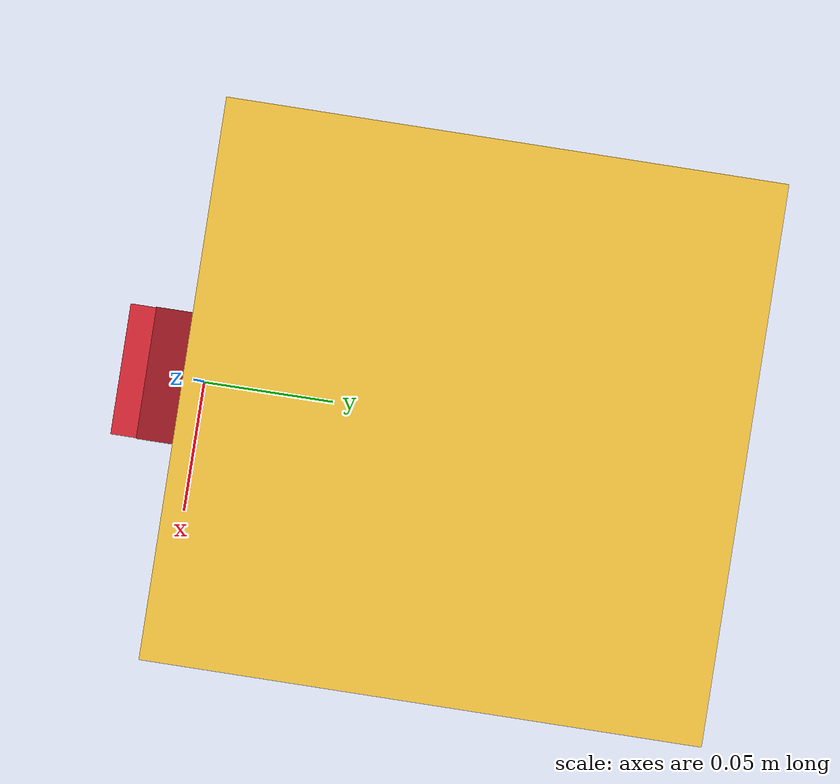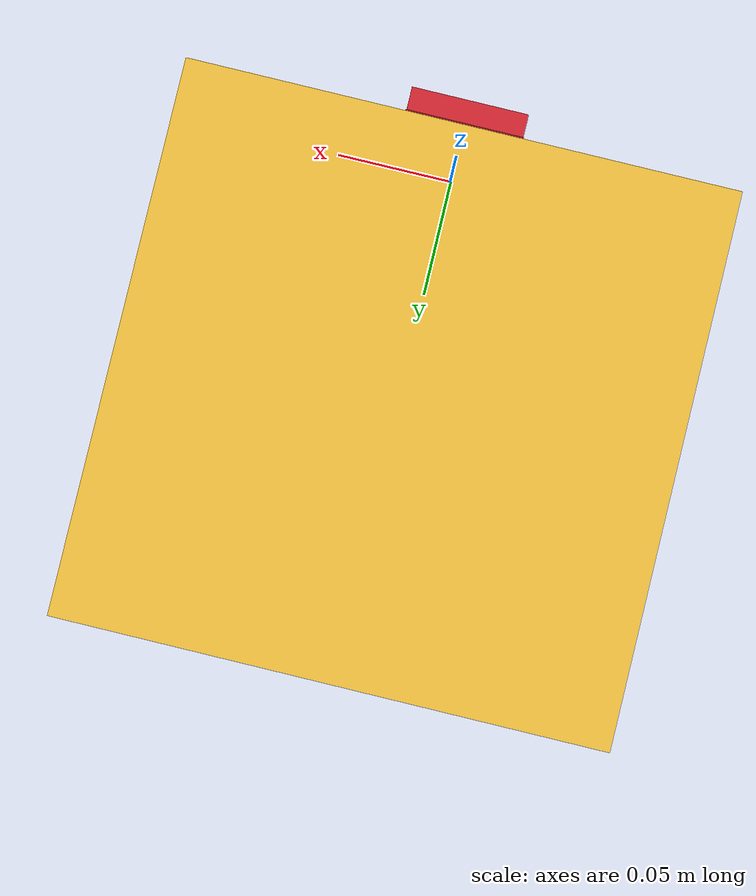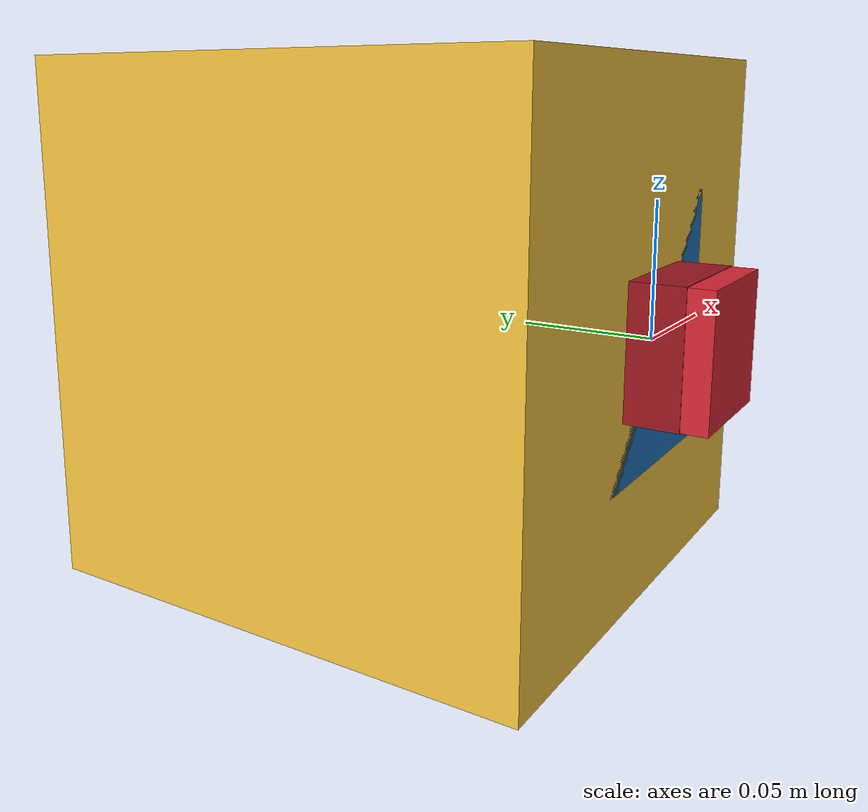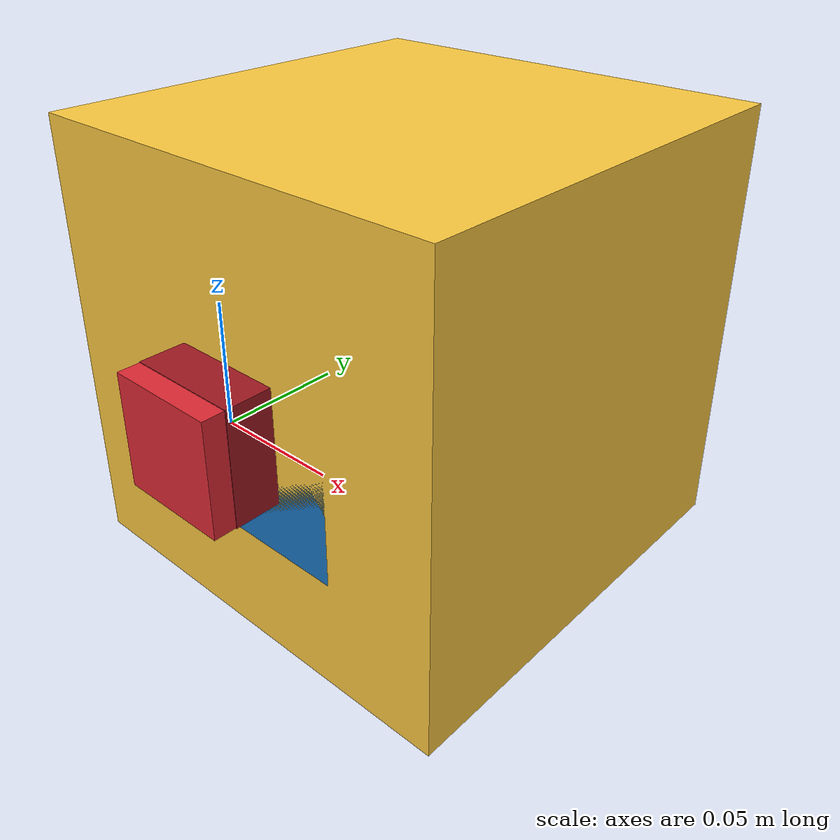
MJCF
<mujoco model="MuJoCo Model">
  <compiler angle="radian"/>

  <worldbody>
    <body name="core">
      <geom name="core" size="0.1 0.1 0.1" pos="0 0.1 0" type="box" mass="1" rgba="0.992157 0.792157 0.25098 1"/>
      <body name="lefthinge">
        <body name="leftstator">
          <geom name="leftstator" size="0.02475 0.0297 0.02475" type="box" mass="0.02" rgba="0.87451 0.160784 0.207843 1"/>
        </body>
        <body name="leftrotor">
          <joint name="leftservo" axis="0 0 1"/>
          <geom name="leftrotor" size="0.025 0.02 0.025" type="box" mass="0.04" rgba="0.627451 0.0941176 0.129412 1"/>
          <body name="left_frontbrick">
            <geom name="left_frontbrick" size="0.05 0.05 0.05" pos="0 0.05 0" type="box" mass="0.055" rgba="0.109804 0.466667 0.764706 1"/>
          </body>
        </body>
      </body>
      <body name="fronthinge">
        <body name="frontstator">
          <geom name="frontstator" size="0.02475 0.0297 0.02475" type="box" mass="0.02" rgba="0.87451 0.160784 0.207843 1"/>
        </body>
        <body name="frontrotor">
          <joint name="frontservo" axis="0 0 1"/>
          <geom name="frontrotor" size="0.025 0.02 0.025" type="box" mass="0.04" rgba="0.627451 0.0941176 0.129412 1"/>
          <body name="front_frontbrick">
            <geom name="front_frontbrick" size="0.05 0.05 0.05" pos="0 0.05 0" type="box" mass="0.055" rgba="0.109804 0.466667 0.764706 1"/>
          </body>
        </body>
      </body>
      <body name="righthinge">
        <body name="rightstator">
          <geom name="rightstator" size="0.02475 0.0297 0.02475" type="box" mass="0.02" rgba="0.87451 0.160784 0.207843 1"/>
        </body>
        <body name="rightrotor">
          <joint name="rightservo" axis="0 0 1"/>
          <geom name="rightrotor" size="0.025 0.02 0.025" type="box" mass="0.04" rgba="0.627451 0.0941176 0.129412 1"/>
          <body name="right_fronthinge">
            <body name="right_frontstator">
              <geom name="right_frontstator" size="0.02475 0.0297 0.02475" type="box" mass="0.02" rgba="0.87451 0.160784 0.207843 1"/>
            </body>
            <body name="right_frontrotor">
              <joint name="right_frontservo" axis="0 0 1"/>
              <geom name="right_frontrotor" size="0.025 0.02 0.025" type="box" mass="0.04" rgba="0.627451 0.0941176 0.129412 1"/>
              <body name="right_front_frontbrick">
                <geom name="right_front_frontbrick" size="0.05 0.05 0.05" pos="0 0.05 0" type="box" mass="0.055" rgba="0.109804 0.466667 0.764706 1"/>
                <body name="right_front_front_fronthinge">
                  <body name="right_front_front_frontstator">
                    <geom name="right_front_front_frontstator" size="0.02475 0.0297 0.02475" type="box" mass="0.02" rgba="0.87451 0.160784 0.207843 1"/>
                  </body>
                  <body name="right_front_front_frontrotor">
                    <joint name="right_front_front_frontservo" axis="0 0 1"/>
                    <geom name="right_front_front_frontrotor" size="0.025 0.02 0.025" type="box" mass="0.04" rgba="0.627451 0.0941176 0.129412 1"/>
                    <body name="right_front_front_front_frontbrick">
                      <geom name="right_front_front_front_frontbrick" size="0.05 0.05 0.05" pos="0 0.05 0" type="box" mass="0.055" rgba="0.109804 0.466667 0.764706 1"/>
                    </body>
                  </body>
                </body>
              </body>
            </body>
          </body>
        </body>
      </body>
      <body name="backhinge">
        <body name="backstator">
          <geom name="backstator" size="0.02475 0.0297 0.02475" type="box" mass="0.02" rgba="0.87451 0.160784 0.207843 1"/>
        </body>
        <body name="backrotor">
          <joint name="backservo" axis="0 0 1"/>
          <geom name="backrotor" size="0.025 0.02 0.025" type="box" mass="0.04" rgba="0.627451 0.0941176 0.129412 1"/>
          <body name="back_frontbrick">
            <geom name="back_frontbrick" size="0.05 0.05 0.05" pos="0 0.05 0" type="box" mass="0.055" rgba="0.109804 0.466667 0.764706 1"/>
            <body name="back_front_fronthinge">
              <body name="back_front_frontstator">
                <geom name="back_front_frontstator" size="0.02475 0.0297 0.02475" type="box" mass="0.02" rgba="0.87451 0.160784 0.207843 1"/>
              </body>
              <body name="back_front_frontrotor">
                <joint name="back_front_frontservo" axis="0 0 1"/>
                <geom name="back_front_frontrotor" size="0.025 0.02 0.025" type="box" mass="0.04" rgba="0.627451 0.0941176 0.129412 1"/>
                <body name="back_front_front_frontbrick">
                  <geom name="back_front_front_frontbrick" size="0.05 0.05 0.05" pos="0 0.05 0" type="box" mass="0.055" rgba="0.109804 0.466667 0.764706 1"/>
                  <body name="back_front_front_front_righthinge">
                    <body name="back_front_front_front_rightstator">
                      <geom name="back_front_front_front_rightstator" size="0.02475 0.0297 0.02475" type="box" mass="0.02" rgba="0.87451 0.160784 0.207843 1"/>
                    </body>
                    <body name="back_front_front_front_rightrotor">
                      <joint name="back_front_front_front_rightservo" axis="0 0 1"/>
                      <geom name="back_front_front_front_rightrotor" size="0.025 0.02 0.025" type="box" mass="0.04" rgba="0.627451 0.0941176 0.129412 1"/>
                      <body name="back_front_front_front_right_frontbrick">
                        <geom name="back_front_front_front_right_frontbrick" size="0.05 0.05 0.05" pos="0 0.05 0" type="box" mass="0.055" rgba="0.109804 0.466667 0.764706 1"/>
                      </body>
                    </body>
                  </body>
                  <body name="back_front_front_front_lefthinge">
                    <body name="back_front_front_front_leftstator">
                      <geom name="back_front_front_front_leftstator" size="0.02475 0.0297 0.02475" type="box" mass="0.02" rgba="0.87451 0.160784 0.207843 1"/>
                    </body>
                    <body name="back_front_front_front_leftrotor">
                      <joint name="back_front_front_front_leftservo" axis="0 0 1"/>
                      <geom name="back_front_front_front_leftrotor" size="0.025 0.02 0.025" type="box" mass="0.04" rgba="0.627451 0.0941176 0.129412 1"/>
                      <body name="back_front_front_front_left_frontbrick">
                        <geom name="back_front_front_front_left_frontbrick" size="0.05 0.05 0.05" pos="0 0.05 0" type="box" mass="0.055" rgba="0.109804 0.466667 0.764706 1"/>
                      </body>
                    </body>
                  </body>
                </body>
              </body>
            </body>
          </body>
        </body>
      </body>
    </body>
  </worldbody>

  <contact>
    <exclude body1="leftstator" body2="leftrotor"/>
    <exclude body1="frontstator" body2="frontrotor"/>
    <exclude body1="rightstator" body2="rightrotor"/>
    <exclude body1="right_frontstator" body2="right_frontrotor"/>
    <exclude body1="right_front_front_frontstator" body2="right_front_front_frontrotor"/>
    <exclude body1="backstator" body2="backrotor"/>
    <exclude body1="back_front_frontstator" body2="back_front_frontrotor"/>
    <exclude body1="back_front_front_front_rightstator" body2="back_front_front_front_rightrotor"/>
    <exclude body1="back_front_front_front_leftstator" body2="back_front_front_front_leftrotor"/>
  </contact>

  <actuator>
    <general name="leftservo" joint="leftservo" ctrlrange="-1.5708 1.5708" dynprm="0 0 0 0 0 0 0 0 0 0" biastype="affine" biasprm="0 -1 -1"/>
    <general name="frontservo" joint="frontservo" ctrlrange="-1.5708 1.5708" dynprm="0 0 0 0 0 0 0 0 0 0" biastype="affine" biasprm="0 -1 -1"/>
    <general name="rightservo" joint="rightservo" ctrlrange="-1.5708 1.5708" dynprm="0 0 0 0 0 0 0 0 0 0" biastype="affine" biasprm="0 -1 -1"/>
    <general name="right_frontservo" joint="right_frontservo" ctrlrange="-1.5708 1.5708" dynprm="0 0 0 0 0 0 0 0 0 0" biastype="affine" biasprm="0 -1 -1"/>
    <general name="right_front_front_frontservo" joint="right_front_front_frontservo" ctrlrange="-1.5708 1.5708" dynprm="0 0 0 0 0 0 0 0 0 0" biastype="affine" biasprm="0 -1 -1"/>
    <general name="backservo" joint="backservo" ctrlrange="-1.5708 1.5708" dynprm="0 0 0 0 0 0 0 0 0 0" biastype="affine" biasprm="0 -1 -1"/>
    <general name="back_front_frontservo" joint="back_front_frontservo" ctrlrange="-1.5708 1.5708" dynprm="0 0 0 0 0 0 0 0 0 0" biastype="affine" biasprm="0 -1 -1"/>
    <general name="back_front_front_front_rightservo" joint="back_front_front_front_rightservo" ctrlrange="-1.5708 1.5708" dynprm="0 0 0 0 0 0 0 0 0 0" biastype="affine" biasprm="0 -1 -1"/>
    <general name="back_front_front_front_leftservo" joint="back_front_front_front_leftservo" ctrlrange="-1.5708 1.5708" dynprm="0 0 0 0 0 0 0 0 0 0" biastype="affine" biasprm="0 -1 -1"/>
  </actuator>
</mujoco>
